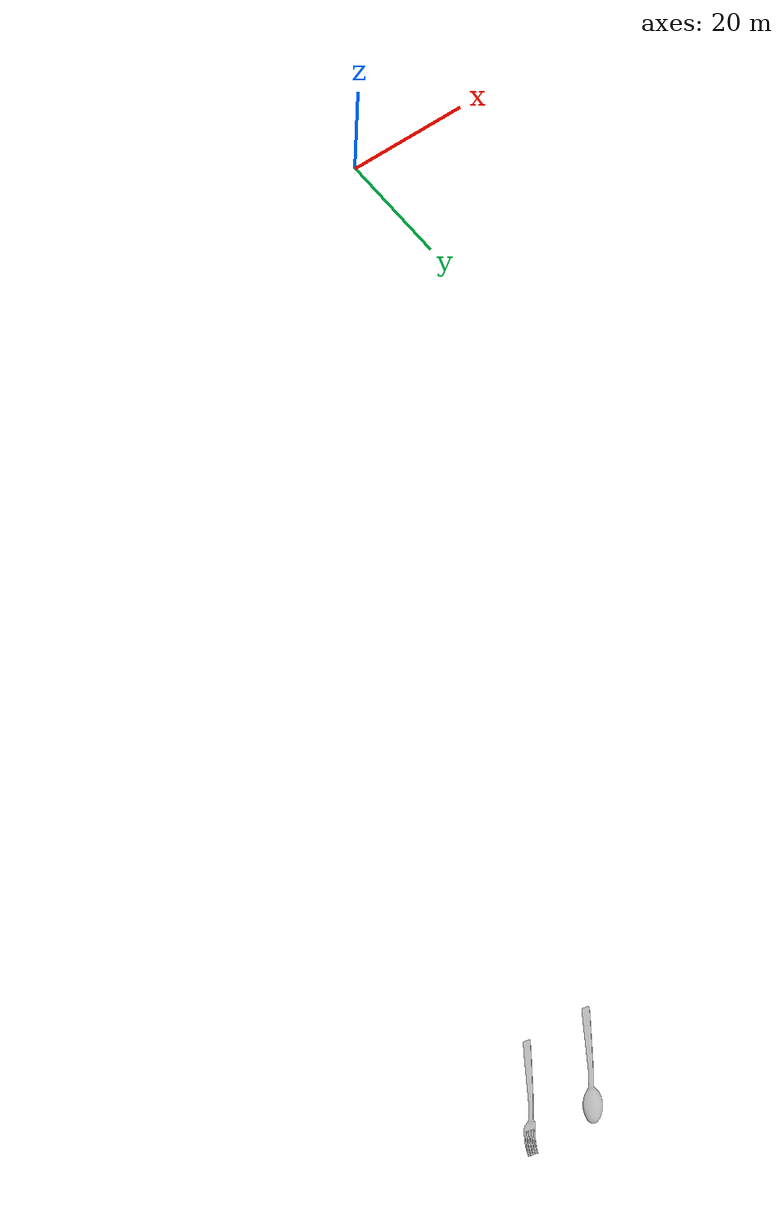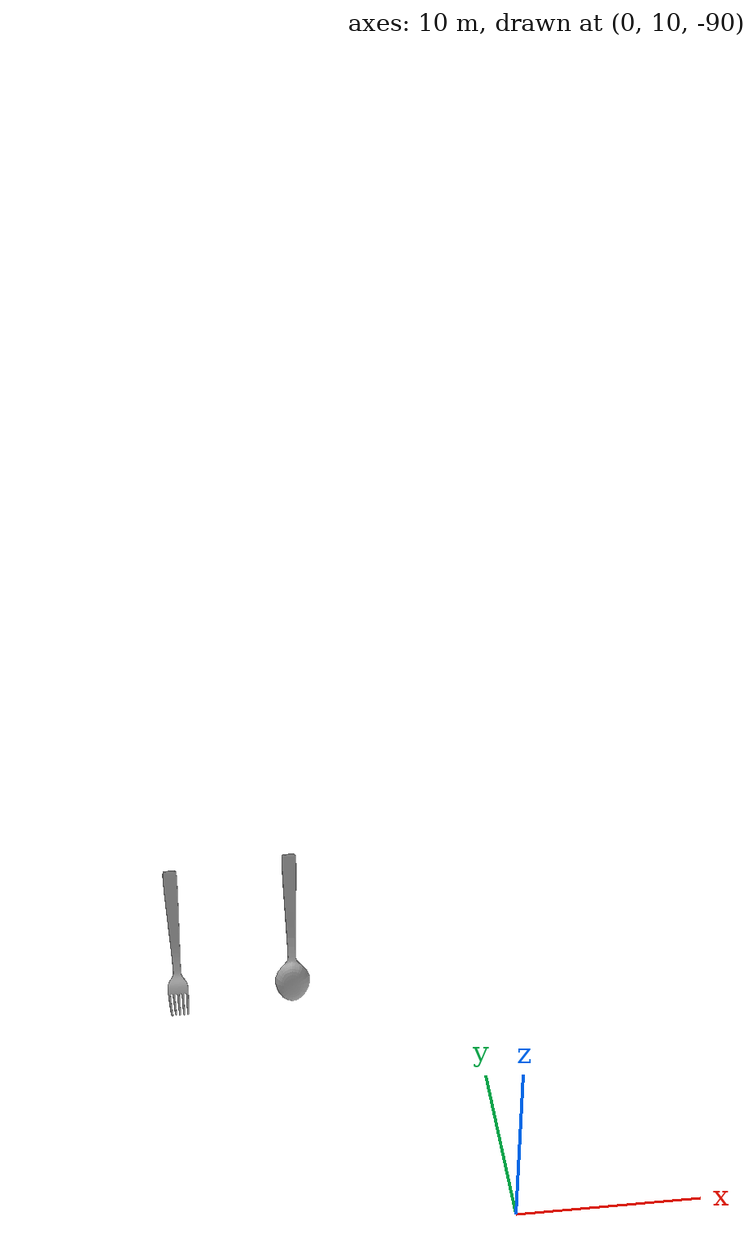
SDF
<sdf version="1.6">
  <model name="utensil_fork">
    <static>true</static>
    <link name="link">
      <visual name="visual">
        <geometry>
          <mesh>
            <scale>1 1 1</scale>
            <uri>model://utensil_fork/meshes/model.obj</uri>
          </mesh>
        </geometry>
      </visual>
    </link>
  </model>
</sdf>
